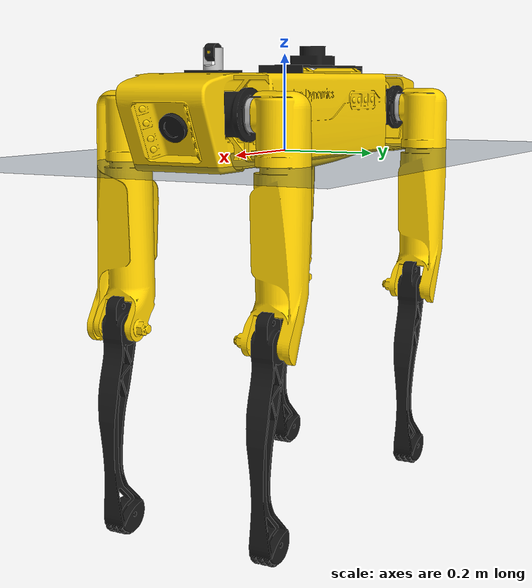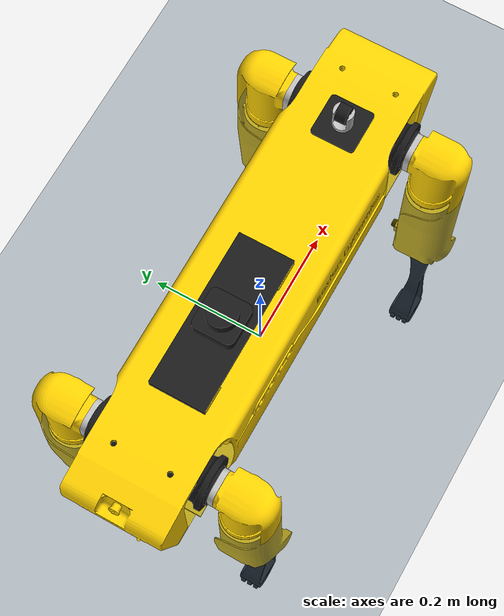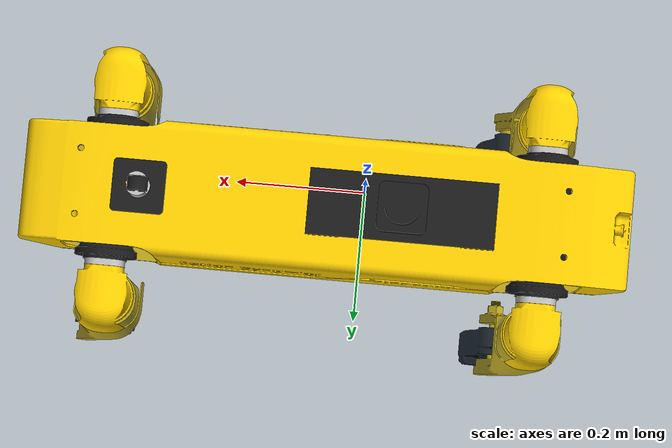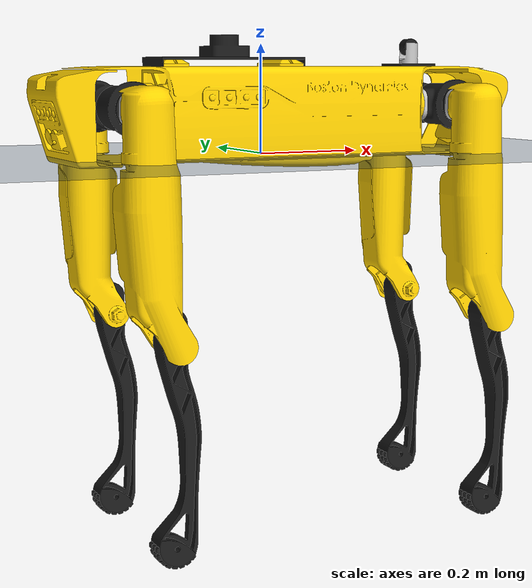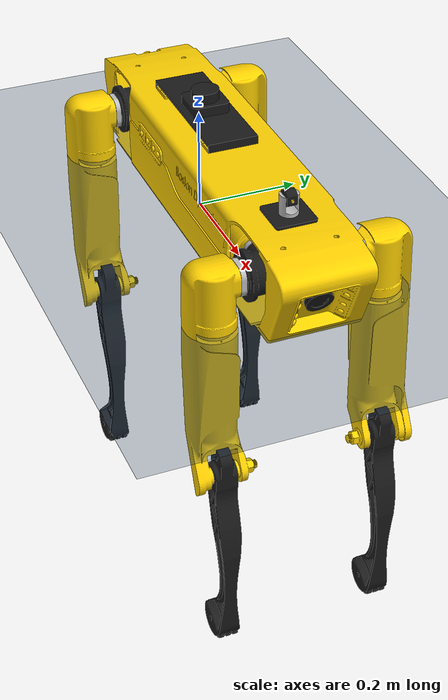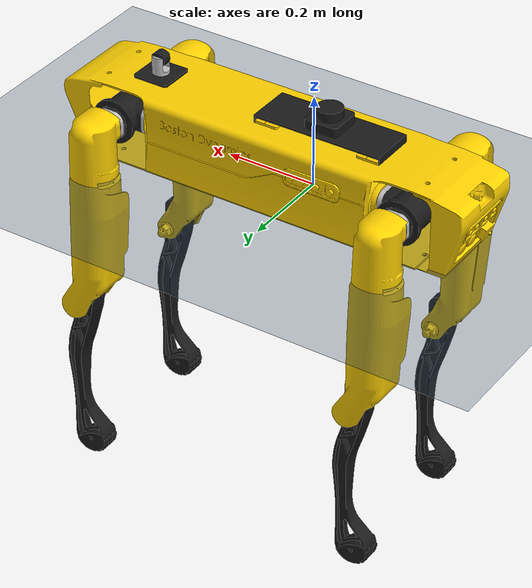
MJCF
<mujoco model="bosdyn_spot scene">
  <include file="spot.xml"/>

  <statistic center="0 0 0.3" extent="1.2" meansize="0.05"/>

  <visual>
    <headlight diffuse="0.6 0.6 0.6" ambient="0.3 0.3 0.3" specular="0 0 0"/>
    <rgba haze="0.15 0.25 0.35 1"/>
    <global azimuth="220" elevation="-10"/>
    <quality shadowsize="4096"/>
  </visual>

  <asset>
    <texture type="skybox" builtin="gradient" rgb1="0.3 0.5 0.7" rgb2="0 0 0"
      width="512" height="3072"/>
    <texture type="2d" name="groundplane" builtin="checker" mark="edge"
      rgb1="0.2 0.3 0.4" rgb2="0.1 0.2 0.3" markrgb="0.8 0.8 0.8"
      width="300" height="300"/>
    <material name="groundplane" texture="groundplane" texuniform="true"
      texrepeat="5 5" reflectance="0.2"/>
  </asset>

  <worldbody>
    <geom name="floor" type="plane" size="0 0 0.05" material="groundplane"/>
  </worldbody>
</mujoco>

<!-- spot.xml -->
<mujoco model="bosdyn_spot">
  <compiler angle="radian" meshdir="assets" autolimits="true" />
  <option timestep="0.002" integrator="implicitfast" cone="elliptic" impratio="100" />
  <default>
    <default class="spot">
      <geom solref="0.004 1" friction="0.8 0.02 0.01" />
      <joint damping="1.0" armature="0.01" frictionloss="0.1" />
      <position kp="200" kv="10" inheritrange="1" />
      <default class="visual">
        <geom group="2" type="mesh" contype="0" conaffinity="0" density="0" />
      </default>
      <default class="collision">
        <geom group="3" contype="1" conaffinity="1" />
        <default class="foot">
          <geom type="sphere" priority="1" condim="6" solimp="0.015 1 0.031" friction="1.0 0.02 0.01" />
        </default>
      </default>
    </default>
  </default>
  <asset>
    <mesh name="base_link" content_type="model/stl" file="base_link.STL" scale="0.001 0.001 0.001" />
    <mesh name="camera" content_type="model/stl" file="camera.STL" scale="0.001 0.001 0.001" />
    <mesh name="lidar" content_type="model/stl" file="lidar.STL" scale="0.001 0.001 0.001" />
    <mesh name="imu_sensor" content_type="model/stl" file="imu_sensor.STL" scale="0.001 0.001 0.001" />
    <mesh name="roof" content_type="model/stl" file="roof.STL" scale="0.001 0.001 0.001" />
    <mesh name="laser_pointer_bottom" content_type="model/stl" file="laser_pointer_bottom.STL" scale="0.001 0.001 0.001" />
    <mesh name="laser_pointer_body" content_type="model/stl" file="laser_pointer_body.STL" scale="0.001 0.001 0.001" />
    <mesh name="laser_pointer_head" content_type="model/stl" file="laser_pointer_head.STL" scale="0.001 0.001 0.001" />
    <mesh name="laser_source" content_type="model/stl" file="laser_source.STL" scale="0.001 0.001 0.001" />
    <mesh name="fl_hip_roll" content_type="model/stl" file="fl_hip_roll.STL" scale="0.001 0.001 0.001" />
    <mesh name="fl_hip_roll_connector" content_type="model/stl" file="fl_hip_roll_connector.STL" scale="0.001 0.001 0.001" />
    <mesh name="fl_hip_yaw" content_type="model/stl" file="fl_hip_yaw.STL" scale="0.001 0.001 0.001" />
    <mesh name="fl_hip_yaw_connector" content_type="model/stl" file="fl_hip_yaw_connector.STL" scale="0.001 0.001 0.001" />
    <mesh name="fl_knee" content_type="model/stl" file="fl_knee.STL" scale="0.001 0.001 0.001" />
    <mesh name="fr_hip_roll" content_type="model/stl" file="fr_hip_roll.STL" scale="0.001 0.001 0.001" />
    <mesh name="fr_hip_roll_connector" content_type="model/stl" file="fr_hip_roll_connector.STL" scale="0.001 0.001 0.001" />
    <mesh name="fr_hip_yaw" content_type="model/stl" file="fr_hip_yaw.STL" scale="0.001 0.001 0.001" />
    <mesh name="fr_hip_yaw_connector" content_type="model/stl" file="fr_hip_yaw_connector.STL" scale="0.001 0.001 0.001" />
    <mesh name="fr_knee" content_type="model/stl" file="fr_knee.STL" scale="0.001 0.001 0.001" />
    <mesh name="rl_hip_roll" content_type="model/stl" file="rl_hip_roll.STL" scale="0.001 0.001 0.001" />
    <mesh name="rl_hip_roll_connector" content_type="model/stl" file="rl_hip_roll_connector.STL" scale="0.001 0.001 0.001" />
    <mesh name="rl_hip_yaw" content_type="model/stl" file="rl_hip_yaw.STL" scale="0.001 0.001 0.001" />
    <mesh name="rl_hip_yaw_connector" content_type="model/stl" file="rl_hip_yaw_connector.STL" scale="0.001 0.001 0.001" />
    <mesh name="rl_knee" content_type="model/stl" file="rl_knee.STL" scale="0.001 0.001 0.001" />
    <mesh name="rr_hip_roll" content_type="model/stl" file="rr_hip_roll.STL" scale="0.001 0.001 0.001" />
    <mesh name="rr_hip_roll_connector" content_type="model/stl" file="rr_hip_roll_connector.STL" scale="0.001 0.001 0.001" />
    <mesh name="rr_hip_yaw" content_type="model/stl" file="rr_hip_yaw.STL" scale="0.001 0.001 0.001" />
    <mesh name="rr_hip_yaw_connector" content_type="model/stl" file="rr_hip_yaw_connector.STL" scale="0.001 0.001 0.001" />
    <mesh name="rr_knee" content_type="model/stl" file="rr_knee.STL" scale="0.001 0.001 0.001" />
    <material name="spot_yellow" rgba="1.0 0.82 0.0 1" />
    <material name="midnight_black" rgba="0.1 0.1 0.1 1" />
    <material name="silver" rgba="0.75 0.75 0.75 1" />
  </asset>
  <worldbody>
    <light name="spotlight" mode="targetbodycom" target="base_link" pos="3 0 4" cutoff="30" />
    <body name="base_link" childclass="spot" pos="0 0 0">
      <freejoint name="root" />
      <light name="tracking" mode="trackcom" pos="0 0 2" />
      <inertial pos="0.055571 0.035451 0.074803" quat="-0.0169247 0.705588 -0.0172146 0.708211" mass="7.01332" diaginertia="0.37851 0.374794 0.0478084" />
      <geom type="mesh" mesh="base_link" class="visual" material="spot_yellow" />
      <body name="camera" pos="0.469876 0.035451 0.066943">
        <inertial pos="0 0 0" mass="0.05" diaginertia="5e-05 5e-05 5e-05" />
        <geom pos="-0.469876 -0.035451 -0.066943" type="mesh" mesh="camera" class="visual" material="midnight_black" />
      </body>
      <body name="lidar" pos="-0.057762 0.035451 0.176617">
        <inertial pos="0 0 0" mass="0.05" diaginertia="5e-05 5e-05 5e-05" />
        <geom pos="0.057762 -0.035451 -0.176617" quat="1 0 0 0" type="mesh" mesh="lidar" class="visual" material="midnight_black" />
      </body>
      <body name="imu_sensor" pos="0.06609 0.035451 0.002617">
        <inertial pos="0 0 0" mass="0.05" diaginertia="5e-05 5e-05 5e-05" />
        <geom pos="-0.06609 -0.035451 -0.002617" quat="1 0 0 0" type="mesh" mesh="imu_sensor" class="visual" material="midnight_black" />
        <site name="imu" size="0.01" group="5" />
      </body>
      <body name="roof" pos="-0.057762 0.035451 0.171617">
        <inertial pos="0 0 0" mass="0.05" diaginertia="5e-05 5e-05 5e-05" />
        <geom pos="0.057762 -0.035451 -0.171617" quat="1 0 0 0" type="mesh" mesh="roof" class="visual" material="midnight_black" />
      </body>
      <body name="laser_pointer_bottom" pos="0.340151 0.035451 0.164617">
        <inertial pos="0 0 0" mass="0.05" diaginertia="5e-05 5e-05 5e-05" />
        <geom pos="-0.340151 -0.035451 -0.164617" quat="1 0 0 0" type="mesh" mesh="laser_pointer_bottom" class="visual" material="midnight_black" />
        <body name="laser_pointer_body">
          <inertial pos="0 0 0" mass="0.05" diaginertia="5e-05 5e-05 5e-05" />
          <joint name="laser_pointer_body_joint" actuatorfrcrange="-100 100" axis="0 0 1" range="-3.14159 3.14159" />
          <geom pos="-0.340151 -0.035451 -0.164617" type="mesh" mesh="laser_pointer_body" class="visual" material="silver" />
          <body name="laser_pointer_head" pos="0 0 0.032">
            <inertial pos="0 0 0" mass="0.05" diaginertia="5e-05 5e-05 5e-05" />
            <joint name="laser_pointer_head_joint" range="-0.5236 0.5236" actuatorfrcrange="-100 100" axis="0 1 0" />
            <geom pos="-0.340151 -0.035451 -0.196617" quat="1 0 0 0" type="mesh" mesh="laser_pointer_head" class="visual" material="midnight_black" />
            <body name="laser_source" pos="0.014 0 0">
              <inertial pos="0 0 0" mass="0.05" diaginertia="5e-05 5e-05 5e-05" />
              <geom pos="-0.354151 -0.035451 -0.196617" type="mesh" mesh="laser_source" class="visual" material="spot_yellow" />
            </body>
          </body>
        </body>
      </body>
      <body name="fl_hip_roll" pos="0.335676 0.085451 0.086617">
        <inertial pos="0 0 0" mass="0.2" diaginertia="0.0002 0.0002 0.0002" />
        <joint name="fl_hip_roll_joint" range="-0.239 0.5" actuatorfrcrange="-100 100" axis="1 0 0" />
        <geom pos="-0.335676 -0.085451 -0.086617" quat="1 0 0 0" type="mesh" mesh="fl_hip_roll" class="visual" material="midnight_black" />
        <body name="fl_hip_roll_connector">
          <inertial pos="0 0 0" mass="0.05" diaginertia="5e-05 5e-05 5e-05" />
          <geom pos="-0.335676 -0.085451 -0.086617" type="mesh" mesh="fl_hip_roll_connector" class="visual" material="silver" />
          <body name="fl_hip_yaw" pos="0.05 0.07 0">
            <inertial pos="0 0 0" mass="0.5" diaginertia="0.0005 0.0005 0.0005" />
            <joint name="fl_hip_yaw_joint" range="-3.14 3.14" actuatorfrcrange="-100 100" axis="0 1 0" />
            <geom pos="-0.385676 -0.155451 -0.086617" quat="1 0 0 0" type="mesh" mesh="fl_hip_yaw" class="visual" material="spot_yellow" />
            <body name="fl_hip_yaw_connector">
              <inertial pos="0 0 0" mass="0.05" diaginertia="5e-05 5e-05 5e-05" />
              <geom pos="-0.385676 -0.155451 -0.086617" quat="1 0 0 0" type="mesh" mesh="fl_hip_yaw_connector" class="visual" material="silver" />
              <body name="fl_knee" pos="0.039612 0.063535 -0.398541">
                <inertial pos="0 0 0" mass="0.3" diaginertia="0.0003 0.0003 0.0003" />
                <joint name="fl_knee_joint" range="-2.631 -0.662" actuatorfrcrange="-100 100" axis="0 1 0" />
                <geom pos="-0.425288 -0.218986 0.311924" quat="1 0 0 0" type="mesh" mesh="fl_knee" class="visual" material="midnight_black" />
                <geom name="fl_foot" class="foot" size="0.0415" pos="0.00073 -0.0222 -0.37038" />
                <site name="fl_foot_site" pos="0.00073 -0.0222 -0.37038" size="0.01" group="5" rgba="1 0 0 1" />
              </body>
            </body>
          </body>
        </body>
      </body>
      <body name="fr_hip_roll" pos="0.335676 -0.014549 0.086617">
        <inertial pos="0 0 0" mass="0.2" diaginertia="0.0002 0.0002 0.0002" />
        <joint name="fr_hip_roll_joint" range="-0.239 0.5" actuatorfrcrange="-100 100" axis="1 0 0" />
        <geom pos="-0.335676 0.014549 -0.086617" quat="1 0 0 0" type="mesh" mesh="fr_hip_roll" class="visual" material="midnight_black" />
        <body name="fr_hip_roll_connector">
          <inertial pos="0 0 0" mass="0.05" diaginertia="5e-05 5e-05 5e-05" />
          <geom pos="-0.335676 0.014549 -0.086617" type="mesh" mesh="fr_hip_roll_connector" class="visual" material="silver" />
          <body name="fr_hip_yaw" pos="0.05 -0.07 0">
            <inertial pos="0 0 0" mass="0.5" diaginertia="0.0005 0.0005 0.0005" />
            <joint name="fr_hip_yaw_joint" range="-3.14 3.14" actuatorfrcrange="-100 100" axis="0 1 0" />
            <geom pos="-0.385676 0.084549 -0.086617" type="mesh" mesh="fr_hip_yaw" class="visual" material="spot_yellow" />
            <body name="fr_hip_yaw_connector">
              <inertial pos="0 0 0" mass="0.05" diaginertia="5e-05 5e-05 5e-05" />
              <geom pos="-0.385676 0.084549 -0.086617" quat="1 0 0 0" type="mesh" mesh="fr_hip_yaw_connector" class="visual" material="silver" />
              <body name="fr_knee" pos="0.039612 -0.063535 -0.398541">
                <inertial pos="0 0 0" mass="0.3" diaginertia="0.0003 0.0003 0.0003" />
                <joint name="fr_knee_joint" range="-2.631 -0.662" actuatorfrcrange="-100 100" axis="0 1 0" />
                <geom pos="-0.425288 0.148084 0.311924" quat="1 0 0 0" type="mesh" mesh="fr_knee" class="visual" material="midnight_black" />
                <geom name="fr_foot" class="foot" size="0.0415" pos="0.00077 0.02191 -0.37047" />
                <site name="fr_foot_site" pos="0.00077 0.02191 -0.37047" size="0.01" group="5" rgba="1 0 0 1" />
              </body>
            </body>
          </body>
        </body>
      </body>
      <body name="rl_hip_roll" pos="-0.224324 0.085451 0.086617">
        <inertial pos="0 0 0" mass="0.2" diaginertia="0.0002 0.0002 0.0002" />
        <joint name="rl_hip_roll_joint" range="-0.239 0.5" actuatorfrcrange="-100 100" axis="1 0 0" />
        <geom pos="0.224324 -0.085451 -0.086617" quat="1 0 0 0" type="mesh" mesh="rl_hip_roll" class="visual" material="midnight_black" />
        <body name="rl_hip_roll_connector">
          <inertial pos="0 0 0" mass="0.05" diaginertia="5e-05 5e-05 5e-05" />
          <geom pos="0.224324 -0.085451 -0.086617" type="mesh" mesh="rl_hip_roll_connector" class="visual" material="silver" />
          <body name="rl_hip_yaw" pos="-0.05 0.07 0">
            <inertial pos="0 0 0" mass="0.5" diaginertia="0.0005 0.0005 0.0005" />
            <joint name="rl_hip_yaw_joint" range="-3.14 3.14" actuatorfrcrange="-100 100" axis="0 1 0" />
            <geom pos="0.274324 -0.155451 -0.086617" type="mesh" mesh="rl_hip_yaw" class="visual" material="spot_yellow" />
            <body name="rl_hip_yaw_connector">
              <inertial pos="0 0 0" mass="0.05" diaginertia="5e-05 5e-05 5e-05" />
              <geom pos="0.274324 -0.155451 -0.086617" quat="1 0 0 0" type="mesh" mesh="rl_hip_yaw_connector" class="visual" material="silver" />
              <body name="rl_knee" pos="0.039612 0.063535 -0.398541">
                <inertial pos="0 0 0" mass="0.3" diaginertia="0.0003 0.0003 0.0003" />
                <joint name="rl_knee_joint" range="-2.631 -0.662" actuatorfrcrange="-100 100" axis="0 1 0" />
                <geom pos="0.234712 -0.218986 0.311924" quat="1 0 0 0" type="mesh" mesh="rl_knee" class="visual" material="midnight_black" />
                <geom name="rl_foot" class="foot" size="0.0415" pos="0.00071 -0.02217 -0.3706" />
                <site name="rl_foot_site" pos="0.00071 -0.02217 -0.3706" size="0.01" group="5" rgba="1 0 0 1" />
              </body>
            </body>
          </body>
        </body>
      </body>
      <body name="rr_hip_roll" pos="-0.224324 -0.014549 0.086617">
        <inertial pos="0 0 0" mass="0.2" diaginertia="0.0002 0.0002 0.0002" />
        <joint name="rr_hip_roll_joint" range="-0.239 0.5" actuatorfrcrange="-100 100" axis="1 0 0" />
        <geom pos="0.224324 0.014549 -0.086617" quat="1 0 0 0" type="mesh" mesh="rr_hip_roll" class="visual" material="midnight_black" />
        <body name="rr_hip_roll_connector">
          <inertial pos="0 0 0" mass="0.05" diaginertia="5e-05 5e-05 5e-05" />
          <geom pos="0.224324 0.014549 -0.086617" type="mesh" mesh="rr_hip_roll_connector" class="visual" material="silver" />
          <body name="rr_hip_yaw" pos="-0.05 -0.07 0">
            <inertial pos="0 0 0" mass="0.5" diaginertia="0.0005 0.0005 0.0005" />
            <joint name="rr_hip_yaw_joint" range="-3.14 3.14" actuatorfrcrange="-100 100" axis="0 1 0" />
            <geom pos="0.274324 0.084549 -0.086617" type="mesh" mesh="rr_hip_yaw" class="visual" material="spot_yellow" />
            <body name="rr_hip_yaw_connector">
              <inertial pos="0 0 0" mass="0.05" diaginertia="5e-05 5e-05 5e-05" />
              <geom pos="0.274324 0.084549 -0.086617" quat="1 0 0 0" type="mesh" mesh="rr_hip_yaw_connector" class="visual" material="silver" />
              <body name="rr_knee" pos="0.039612 -0.063535 -0.398541">
                <inertial pos="0 0 0" mass="0.3" diaginertia="0.0003 0.0003 0.0003" />
                <joint name="rr_knee_joint" range="-2.631 -0.662" actuatorfrcrange="-100 100" axis="0 1 0" />
                <geom pos="0.234712 0.148084 0.311924" quat="1 0 0 0" type="mesh" mesh="rr_knee" class="visual" material="midnight_black" />
                <geom name="rr_foot" class="foot" size="0.0415" pos="0.00078 0.02179 -0.37038" />
                <site name="rr_foot_site" pos="0.00078 0.02179 -0.37038" size="0.01" group="5" rgba="1 0 0 1" />
              </body>
            </body>
          </body>
        </body>
      </body>
    </body>
  </worldbody>
  <contact>
    <exclude body1="base_link" body2="fl_hip_yaw" />
    <exclude body1="base_link" body2="fl_hip_roll" />
    <exclude body1="base_link" body2="fr_hip_yaw" />
    <exclude body1="base_link" body2="fr_hip_roll" />
    <exclude body1="base_link" body2="rl_hip_yaw" />
    <exclude body1="base_link" body2="rl_hip_roll" />
    <exclude body1="base_link" body2="rr_hip_yaw" />
    <exclude body1="base_link" body2="rr_hip_roll" />
  </contact>
  <actuator>
    <position class="spot" name="fl_hip_roll_joint" joint="fl_hip_roll_joint" />
    <position class="spot" name="fl_hip_yaw_joint" joint="fl_hip_yaw_joint" />
    <position class="spot" name="fl_knee_joint" joint="fl_knee_joint" />
    <position class="spot" name="fr_hip_roll_joint" joint="fr_hip_roll_joint" />
    <position class="spot" name="fr_hip_yaw_joint" joint="fr_hip_yaw_joint" />
    <position class="spot" name="fr_knee_joint" joint="fr_knee_joint" />
    <position class="spot" name="rl_hip_roll_joint" joint="rl_hip_roll_joint" />
    <position class="spot" name="rl_hip_yaw_joint" joint="rl_hip_yaw_joint" />
    <position class="spot" name="rl_knee_joint" joint="rl_knee_joint" />
    <position class="spot" name="rr_hip_roll_joint" joint="rr_hip_roll_joint" />
    <position class="spot" name="rr_hip_yaw_joint" joint="rr_hip_yaw_joint" />
    <position class="spot" name="rr_knee_joint" joint="rr_knee_joint" />
    <position class="spot" name="laser_pointer_body_joint" joint="laser_pointer_body_joint" />
    <position class="spot" name="laser_pointer_head_joint" joint="laser_pointer_head_joint" />
  </actuator>
  <keyframe>
    <key name="home" qpos="0 0 0.505072 1 0 0 0 0 0 0 0.764 -1.646 0 0.764 -1.646 0 0.764 -1.646 0 0.764 -1.646" ctrl="0 0.764 -1.646 0 0.764 -1.646 0 0.764 -1.646 0 0.764 -1.646 0 0" />
  </keyframe>
</mujoco>
